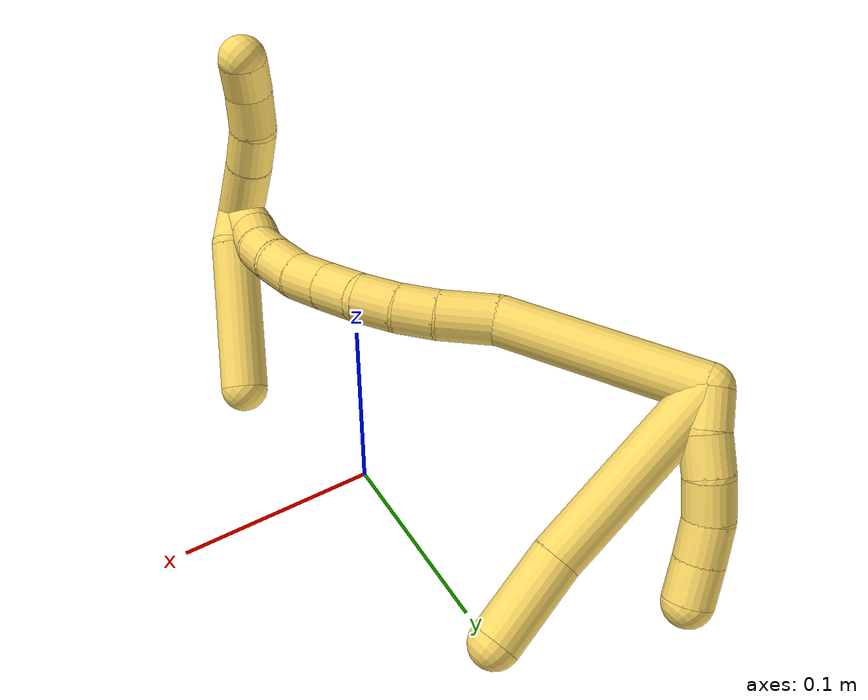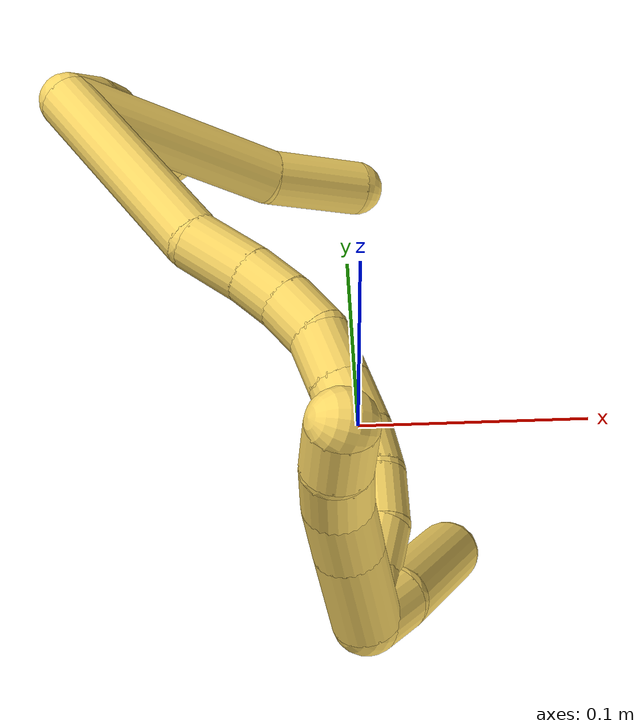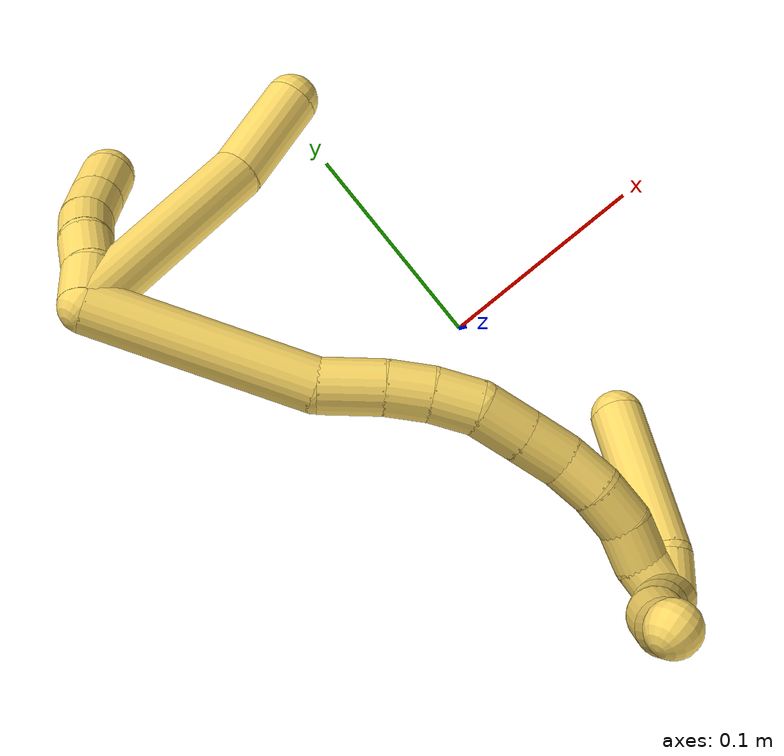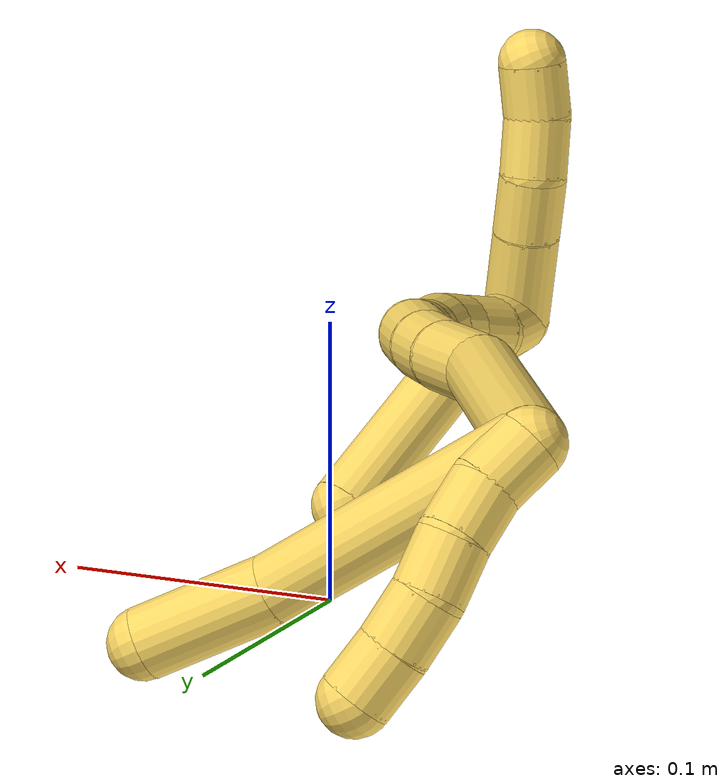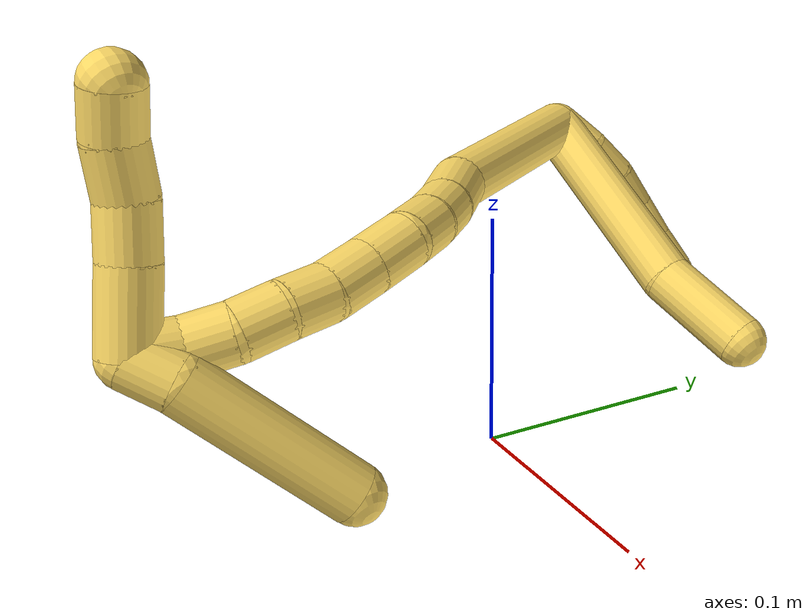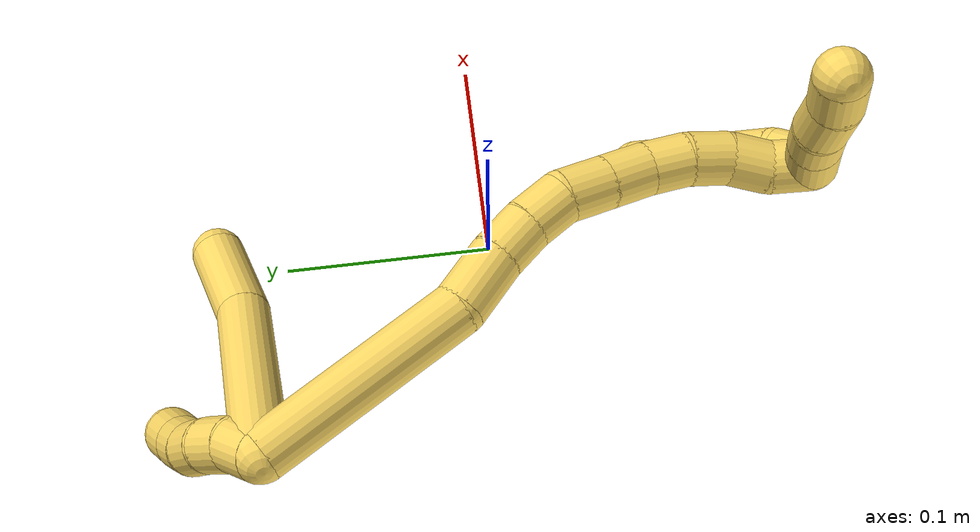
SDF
<sdf version="1.7">
 <world name="default">
  <model name="5">
   <static>0</static>
   <link name="5">
    <collision name="collision-cylinder-e_1_2_8">
     <pose>0.004453 -0.001261 0.051305 0.024579 0.086546 0.001064</pose>
     <geometry><cylinder><radius>0.0125</radius><length>0.103026</length></cylinder></geometry>
     <surface>
      <friction><ode><mu>1.16</mu><mu2>1.16</mu2><slip1>0</slip1><slip2>0</slip2></ode></friction>
      <contact><ode><kp>1e+06</kp><kd>1</kd><max_vel>0</max_vel><min_depth>0.001</min_depth></ode></contact>
     </surface>
    </collision>
    <visual name="visual-cylinder-e_1_2_8">
     <pose>0.004453 -0.001261 0.051305 0.024579 0.086546 0.001064</pose>
     <geometry><cylinder><radius>0.0125</radius><length>0.103026</length></cylinder></geometry>
     <material><ambient>1 0.858824 0.4 1</ambient></material>
    </visual>
    <collision name="collision-cylinder-e_2_8_6">
     <pose>0.006682 -0.000281 0.125883 -0.096034 -0.094798 0.004559</pose>
     <geometry><cylinder><radius>0.0125</radius><length>0.046974</length></cylinder></geometry>
     <surface>
      <friction><ode><mu>1.16</mu><mu2>1.16</mu2><slip1>0</slip1><slip2>0</slip2></ode></friction>
      <contact><ode><kp>1e+06</kp><kd>1</kd><max_vel>0</max_vel><min_depth>0.001</min_depth></ode></contact>
     </surface>
    </collision>
    <visual name="visual-cylinder-e_2_8_6">
     <pose>0.006682 -0.000281 0.125883 -0.096034 -0.094798 0.004559</pose>
     <geometry><cylinder><radius>0.0125</radius><length>0.046974</length></cylinder></geometry>
     <material><ambient>1 0.858824 0.4 1</ambient></material>
    </visual>
    <collision name="collision-cylinder-e_1_2_9">
     <pose>0.001024 0.005752 0.008116 -0.616577 0.102592 -0.032695</pose>
     <geometry><cylinder><radius>0.0125</radius><length>0.02</length></cylinder></geometry>
     <surface>
      <friction><ode><mu>1.16</mu><mu2>1.16</mu2><slip1>0</slip1><slip2>0</slip2></ode></friction>
      <contact><ode><kp>1e+06</kp><kd>1</kd><max_vel>0</max_vel><min_depth>0.001</min_depth></ode></contact>
     </surface>
    </collision>
    <visual name="visual-cylinder-e_1_2_9">
     <pose>0.001024 0.005752 0.008116 -0.616577 0.102592 -0.032695</pose>
     <geometry><cylinder><radius>0.0125</radius><length>0.02</length></cylinder></geometry>
     <material><ambient>1 0.858824 0.4 1</ambient></material>
    </visual>
    <collision name="collision-cylinder-e_2_9_10">
     <pose>0.004801 0.018363 0.022968 -0.794355 0.278922 -0.117628</pose>
     <geometry><cylinder><radius>0.0125</radius><length>0.02</length></cylinder></geometry>
     <surface>
      <friction><ode><mu>1.16</mu><mu2>1.16</mu2><slip1>0</slip1><slip2>0</slip2></ode></friction>
      <contact><ode><kp>1e+06</kp><kd>1</kd><max_vel>0</max_vel><min_depth>0.001</min_depth></ode></contact>
     </surface>
    </collision>
    <visual name="visual-cylinder-e_2_9_10">
     <pose>0.004801 0.018363 0.022968 -0.794355 0.278922 -0.117628</pose>
     <geometry><cylinder><radius>0.0125</radius><length>0.02</length></cylinder></geometry>
     <material><ambient>1 0.858824 0.4 1</ambient></material>
    </visual>
    <collision name="collision-cylinder-e_3_10_11">
     <pose>0.012087 0.030969 0.036518 -0.700789 0.470369 -0.174704</pose>
     <geometry><cylinder><radius>0.0125</radius><length>0.02</length></cylinder></geometry>
     <surface>
      <friction><ode><mu>1.16</mu><mu2>1.16</mu2><slip1>0</slip1><slip2>0</slip2></ode></friction>
      <contact><ode><kp>1e+06</kp><kd>1</kd><max_vel>0</max_vel><min_depth>0.001</min_depth></ode></contact>
     </surface>
    </collision>
    <visual name="visual-cylinder-e_3_10_11">
     <pose>0.012087 0.030969 0.036518 -0.700789 0.470369 -0.174704</pose>
     <geometry><cylinder><radius>0.0125</radius><length>0.02</length></cylinder></geometry>
     <material><ambient>1 0.858824 0.4 1</ambient></material>
    </visual>
    <collision name="collision-cylinder-e_4_11_12">
     <pose>0.020552 0.040805 0.051566 -0.460761 0.404266 -0.096057</pose>
     <geometry><cylinder><radius>0.0125</radius><length>0.02</length></cylinder></geometry>
     <surface>
      <friction><ode><mu>1.16</mu><mu2>1.16</mu2><slip1>0</slip1><slip2>0</slip2></ode></friction>
      <contact><ode><kp>1e+06</kp><kd>1</kd><max_vel>0</max_vel><min_depth>0.001</min_depth></ode></contact>
     </surface>
    </collision>
    <visual name="visual-cylinder-e_4_11_12">
     <pose>0.020552 0.040805 0.051566 -0.460761 0.404266 -0.096057</pose>
     <geometry><cylinder><radius>0.0125</radius><length>0.02</length></cylinder></geometry>
     <material><ambient>1 0.858824 0.4 1</ambient></material>
    </visual>
    <collision name="collision-cylinder-e_5_12_5">
     <pose>0.027721 0.048779 0.068429 -0.423278 0.329443 -0.0714</pose>
     <geometry><cylinder><radius>0.0125</radius><length>0.02</length></cylinder></geometry>
     <surface>
      <friction><ode><mu>1.16</mu><mu2>1.16</mu2><slip1>0</slip1><slip2>0</slip2></ode></friction>
      <contact><ode><kp>1e+06</kp><kd>1</kd><max_vel>0</max_vel><min_depth>0.001</min_depth></ode></contact>
     </surface>
    </collision>
    <visual name="visual-cylinder-e_5_12_5">
     <pose>0.027721 0.048779 0.068429 -0.423278 0.329443 -0.0714</pose>
     <geometry><cylinder><radius>0.0125</radius><length>0.02</length></cylinder></geometry>
     <material><ambient>1 0.858824 0.4 1</ambient></material>
    </visual>
    <collision name="collision-cylinder-e_1_2_13">
     <pose>0.005343 -0.048917 0.017718 1.22329 0.102345 0.071814</pose>
     <geometry><cylinder><radius>0.0125</radius><length>0.104602</length></cylinder></geometry>
     <surface>
      <friction><ode><mu>1.16</mu><mu2>1.16</mu2><slip1>0</slip1><slip2>0</slip2></ode></friction>
      <contact><ode><kp>1e+06</kp><kd>1</kd><max_vel>0</max_vel><min_depth>0.001</min_depth></ode></contact>
     </surface>
    </collision>
    <visual name="visual-cylinder-e_1_2_13">
     <pose>0.005343 -0.048917 0.017718 1.22329 0.102345 0.071814</pose>
     <geometry><cylinder><radius>0.0125</radius><length>0.104602</length></cylinder></geometry>
     <material><ambient>1 0.858824 0.4 1</ambient></material>
    </visual>
    <collision name="collision-cylinder-e_2_13_14">
     <pose>0.010116 -0.109815 0.043982 0.951141 -0.038758 -0.019962</pose>
     <geometry><cylinder><radius>0.0125</radius><length>0.029454</length></cylinder></geometry>
     <surface>
      <friction><ode><mu>1.16</mu><mu2>1.16</mu2><slip1>0</slip1><slip2>0</slip2></ode></friction>
      <contact><ode><kp>1e+06</kp><kd>1</kd><max_vel>0</max_vel><min_depth>0.001</min_depth></ode></contact>
     </surface>
    </collision>
    <visual name="visual-cylinder-e_2_13_14">
     <pose>0.010116 -0.109815 0.043982 0.951141 -0.038758 -0.019962</pose>
     <geometry><cylinder><radius>0.0125</radius><length>0.029454</length></cylinder></geometry>
     <material><ambient>1 0.858824 0.4 1</ambient></material>
    </visual>
    <collision name="collision-cylinder-e_3_14_15">
     <pose>0.009764 -0.130682 0.057601 1.05214 0.021306 0.012372</pose>
     <geometry><cylinder><radius>0.0125</radius><length>0.02047</length></cylinder></geometry>
     <surface>
      <friction><ode><mu>1.16</mu><mu2>1.16</mu2><slip1>0</slip1><slip2>0</slip2></ode></friction>
      <contact><ode><kp>1e+06</kp><kd>1</kd><max_vel>0</max_vel><min_depth>0.001</min_depth></ode></contact>
     </surface>
    </collision>
    <visual name="visual-cylinder-e_3_14_15">
     <pose>0.009764 -0.130682 0.057601 1.05214 0.021306 0.012372</pose>
     <geometry><cylinder><radius>0.0125</radius><length>0.02047</length></cylinder></geometry>
     <material><ambient>1 0.858824 0.4 1</ambient></material>
    </visual>
    <collision name="collision-cylinder-e_4_15_16">
     <pose>0.011041 -0.149211 0.066824 1.16433 0.100613 0.066262</pose>
     <geometry><cylinder><radius>0.0125</radius><length>0.021102</length></cylinder></geometry>
     <surface>
      <friction><ode><mu>1.16</mu><mu2>1.16</mu2><slip1>0</slip1><slip2>0</slip2></ode></friction>
      <contact><ode><kp>1e+06</kp><kd>1</kd><max_vel>0</max_vel><min_depth>0.001</min_depth></ode></contact>
     </surface>
    </collision>
    <visual name="visual-cylinder-e_4_15_16">
     <pose>0.011041 -0.149211 0.066824 1.16433 0.100613 0.066262</pose>
     <geometry><cylinder><radius>0.0125</radius><length>0.021102</length></cylinder></geometry>
     <material><ambient>1 0.858824 0.4 1</ambient></material>
    </visual>
    <collision name="collision-cylinder-e_5_16_17">
     <pose>0.016617 -0.168888 0.073803 1.29606 0.408697 0.311268</pose>
     <geometry><cylinder><radius>0.0125</radius><length>0.022724</length></cylinder></geometry>
     <surface>
      <friction><ode><mu>1.16</mu><mu2>1.16</mu2><slip1>0</slip1><slip2>0</slip2></ode></friction>
      <contact><ode><kp>1e+06</kp><kd>1</kd><max_vel>0</max_vel><min_depth>0.001</min_depth></ode></contact>
     </surface>
    </collision>
    <visual name="visual-cylinder-e_5_16_17">
     <pose>0.016617 -0.168888 0.073803 1.29606 0.408697 0.311268</pose>
     <geometry><cylinder><radius>0.0125</radius><length>0.022724</length></cylinder></geometry>
     <material><ambient>1 0.858824 0.4 1</ambient></material>
    </visual>
    <collision name="collision-cylinder-e_6_17_18">
     <pose>0.025297 -0.188573 0.079176 1.31299 0.395427 0.306292</pose>
     <geometry><cylinder><radius>0.0125</radius><length>0.021627</length></cylinder></geometry>
     <surface>
      <friction><ode><mu>1.16</mu><mu2>1.16</mu2><slip1>0</slip1><slip2>0</slip2></ode></friction>
      <contact><ode><kp>1e+06</kp><kd>1</kd><max_vel>0</max_vel><min_depth>0.001</min_depth></ode></contact>
     </surface>
    </collision>
    <visual name="visual-cylinder-e_6_17_18">
     <pose>0.025297 -0.188573 0.079176 1.31299 0.395427 0.306292</pose>
     <geometry><cylinder><radius>0.0125</radius><length>0.021627</length></cylinder></geometry>
     <material><ambient>1 0.858824 0.4 1</ambient></material>
    </visual>
    <collision name="collision-cylinder-e_7_18_19">
     <pose>0.03312 -0.207513 0.082344 1.50375 0.374184 0.35041</pose>
     <geometry><cylinder><radius>0.0125</radius><length>0.020008</length></cylinder></geometry>
     <surface>
      <friction><ode><mu>1.16</mu><mu2>1.16</mu2><slip1>0</slip1><slip2>0</slip2></ode></friction>
      <contact><ode><kp>1e+06</kp><kd>1</kd><max_vel>0</max_vel><min_depth>0.001</min_depth></ode></contact>
     </surface>
    </collision>
    <visual name="visual-cylinder-e_7_18_19">
     <pose>0.03312 -0.207513 0.082344 1.50375 0.374184 0.35041</pose>
     <geometry><cylinder><radius>0.0125</radius><length>0.020008</length></cylinder></geometry>
     <material><ambient>1 0.858824 0.4 1</ambient></material>
    </visual>
    <collision name="collision-cylinder-e_8_19_20">
     <pose>0.04212 -0.22526 0.082815 1.58882 0.563529 0.573231</pose>
     <geometry><cylinder><radius>0.0125</radius><length>0.020009</length></cylinder></geometry>
     <surface>
      <friction><ode><mu>1.16</mu><mu2>1.16</mu2><slip1>0</slip1><slip2>0</slip2></ode></friction>
      <contact><ode><kp>1e+06</kp><kd>1</kd><max_vel>0</max_vel><min_depth>0.001</min_depth></ode></contact>
     </surface>
    </collision>
    <visual name="visual-cylinder-e_8_19_20">
     <pose>0.04212 -0.22526 0.082815 1.58882 0.563529 0.573231</pose>
     <geometry><cylinder><radius>0.0125</radius><length>0.020009</length></cylinder></geometry>
     <material><ambient>1 0.858824 0.4 1</ambient></material>
    </visual>
    <collision name="collision-cylinder-e_9_20_21">
     <pose>0.053691 -0.241133 0.080166 1.8956 0.672109 0.905087</pose>
     <geometry><cylinder><radius>0.0125</radius><length>0.020003</length></cylinder></geometry>
     <surface>
      <friction><ode><mu>1.16</mu><mu2>1.16</mu2><slip1>0</slip1><slip2>0</slip2></ode></friction>
      <contact><ode><kp>1e+06</kp><kd>1</kd><max_vel>0</max_vel><min_depth>0.001</min_depth></ode></contact>
     </surface>
    </collision>
    <visual name="visual-cylinder-e_9_20_21">
     <pose>0.053691 -0.241133 0.080166 1.8956 0.672109 0.905087</pose>
     <geometry><cylinder><radius>0.0125</radius><length>0.020003</length></cylinder></geometry>
     <material><ambient>1 0.858824 0.4 1</ambient></material>
    </visual>
    <collision name="collision-cylinder-e_10_21_1">
     <pose>0.063538 -0.257679 0.075776 1.77511 0.370288 0.452279</pose>
     <geometry><cylinder><radius>0.0125</radius><length>0.020001</length></cylinder></geometry>
     <surface>
      <friction><ode><mu>1.16</mu><mu2>1.16</mu2><slip1>0</slip1><slip2>0</slip2></ode></friction>
      <contact><ode><kp>1e+06</kp><kd>1</kd><max_vel>0</max_vel><min_depth>0.001</min_depth></ode></contact>
     </surface>
    </collision>
    <visual name="visual-cylinder-e_10_21_1">
     <pose>0.063538 -0.257679 0.075776 1.77511 0.370288 0.452279</pose>
     <geometry><cylinder><radius>0.0125</radius><length>0.020001</length></cylinder></geometry>
     <material><ambient>1 0.858824 0.4 1</ambient></material>
    </visual>
    <collision name="collision-cylinder-e_1_1_22">
     <pose>0.053168 -0.267659 0.063409 3.06051 -0.92645 -2.97953</pose>
     <geometry><cylinder><radius>0.0125</radius><length>0.034994</length></cylinder></geometry>
     <surface>
      <friction><ode><mu>1.16</mu><mu2>1.16</mu2><slip1>0</slip1><slip2>0</slip2></ode></friction>
      <contact><ode><kp>1e+06</kp><kd>1</kd><max_vel>0</max_vel><min_depth>0.001</min_depth></ode></contact>
     </surface>
    </collision>
    <visual name="visual-cylinder-e_1_1_22">
     <pose>0.053168 -0.267659 0.063409 3.06051 -0.92645 -2.97953</pose>
     <geometry><cylinder><radius>0.0125</radius><length>0.034994</length></cylinder></geometry>
     <material><ambient>1 0.858824 0.4 1</ambient></material>
    </visual>
    <collision name="collision-cylinder-e_2_22_23">
     <pose>0.030092 -0.269666 0.046187 2.97196 -0.925206 -2.80388</pose>
     <geometry><cylinder><radius>0.0125</radius><length>0.022755</length></cylinder></geometry>
     <surface>
      <friction><ode><mu>1.16</mu><mu2>1.16</mu2><slip1>0</slip1><slip2>0</slip2></ode></friction>
      <contact><ode><kp>1e+06</kp><kd>1</kd><max_vel>0</max_vel><min_depth>0.001</min_depth></ode></contact>
     </surface>
    </collision>
    <visual name="visual-cylinder-e_2_22_23">
     <pose>0.030092 -0.269666 0.046187 2.97196 -0.925206 -2.80388</pose>
     <geometry><cylinder><radius>0.0125</radius><length>0.022755</length></cylinder></geometry>
     <material><ambient>1 0.858824 0.4 1</ambient></material>
    </visual>
    <collision name="collision-cylinder-e_3_23_24">
     <pose>0.012225 -0.274534 0.033716 2.56624 -0.910202 -2.05395</pose>
     <geometry><cylinder><radius>0.0125</radius><length>0.022237</length></cylinder></geometry>
     <surface>
      <friction><ode><mu>1.16</mu><mu2>1.16</mu2><slip1>0</slip1><slip2>0</slip2></ode></friction>
      <contact><ode><kp>1e+06</kp><kd>1</kd><max_vel>0</max_vel><min_depth>0.001</min_depth></ode></contact>
     </surface>
    </collision>
    <visual name="visual-cylinder-e_3_23_24">
     <pose>0.012225 -0.274534 0.033716 2.56624 -0.910202 -2.05395</pose>
     <geometry><cylinder><radius>0.0125</radius><length>0.022237</length></cylinder></geometry>
     <material><ambient>1 0.858824 0.4 1</ambient></material>
    </visual>
    <collision name="collision-cylinder-e_4_24_4">
     <pose>-0.005475 -0.280555 0.024089 2.60727 -1.10047 -2.30224</pose>
     <geometry><cylinder><radius>0.0125</radius><length>0.020015</length></cylinder></geometry>
     <surface>
      <friction><ode><mu>1.16</mu><mu2>1.16</mu2><slip1>0</slip1><slip2>0</slip2></ode></friction>
      <contact><ode><kp>1e+06</kp><kd>1</kd><max_vel>0</max_vel><min_depth>0.001</min_depth></ode></contact>
     </surface>
    </collision>
    <visual name="visual-cylinder-e_4_24_4">
     <pose>-0.005475 -0.280555 0.024089 2.60727 -1.10047 -2.30224</pose>
     <geometry><cylinder><radius>0.0125</radius><length>0.020015</length></cylinder></geometry>
     <material><ambient>1 0.858824 0.4 1</ambient></material>
    </visual>
    <collision name="collision-cylinder-e_1_1_25">
     <pose>0.065778 -0.26072 0.081825 -0.654157 -0.136941 0.046524</pose>
     <geometry><cylinder><radius>0.0125</radius><length>0.020201</length></cylinder></geometry>
     <surface>
      <friction><ode><mu>1.16</mu><mu2>1.16</mu2><slip1>0</slip1><slip2>0</slip2></ode></friction>
      <contact><ode><kp>1e+06</kp><kd>1</kd><max_vel>0</max_vel><min_depth>0.001</min_depth></ode></contact>
     </surface>
    </collision>
    <visual name="visual-cylinder-e_1_1_25">
     <pose>0.065778 -0.26072 0.081825 -0.654157 -0.136941 0.046524</pose>
     <geometry><cylinder><radius>0.0125</radius><length>0.020201</length></cylinder></geometry>
     <material><ambient>1 0.858824 0.4 1</ambient></material>
    </visual>
    <collision name="collision-cylinder-e_2_25_3">
     <pose>0.070039 -0.225999 0.116975 -0.810879 0.141838 -0.060963</pose>
     <geometry><cylinder><radius>0.0125</radius><length>0.079799</length></cylinder></geometry>
     <surface>
      <friction><ode><mu>1.16</mu><mu2>1.16</mu2><slip1>0</slip1><slip2>0</slip2></ode></friction>
      <contact><ode><kp>1e+06</kp><kd>1</kd><max_vel>0</max_vel><min_depth>0.001</min_depth></ode></contact>
     </surface>
    </collision>
    <visual name="visual-cylinder-e_2_25_3">
     <pose>0.070039 -0.225999 0.116975 -0.810879 0.141838 -0.060963</pose>
     <geometry><cylinder><radius>0.0125</radius><length>0.079799</length></cylinder></geometry>
     <material><ambient>1 0.858824 0.4 1</ambient></material>
    </visual>
    <collision name="collision-sphere-3">
     <pose>0.07568 -0.197366 0.144184 0 -0 0</pose>
     <geometry><sphere><radius>0.0125</radius></sphere></geometry>
     <surface>
      <friction><ode><mu>1.16</mu><mu2>1.16</mu2><slip1>0</slip1><slip2>0</slip2></ode></friction>
      <contact><ode><kp>1e+06</kp><kd>1</kd><max_vel>0</max_vel><min_depth>0.001</min_depth></ode></contact>
     </surface>
    </collision>
    <visual name="visual-sphere-3">
     <pose>0.07568 -0.197366 0.144184 0 -0 0</pose>
     <geometry><sphere><radius>0.0125</radius></sphere></geometry>
     <material><ambient>1 0.858824 0.4 1</ambient></material>
    </visual>
    <collision name="collision-sphere-25">
     <pose>0.064399 -0.254631 0.089766 0 -0 0</pose>
     <geometry><sphere><radius>0.0125</radius></sphere></geometry>
     <surface>
      <friction><ode><mu>1.16</mu><mu2>1.16</mu2><slip1>0</slip1><slip2>0</slip2></ode></friction>
      <contact><ode><kp>1e+06</kp><kd>1</kd><max_vel>0</max_vel><min_depth>0.001</min_depth></ode></contact>
     </surface>
    </collision>
    <visual name="visual-sphere-25">
     <pose>0.064399 -0.254631 0.089766 0 -0 0</pose>
     <geometry><sphere><radius>0.0125</radius></sphere></geometry>
     <material><ambient>1 0.858824 0.4 1</ambient></material>
    </visual>
    <collision name="collision-sphere-4">
     <pose>-0.014396 -0.282865 0.020186 0 -0 0</pose>
     <geometry><sphere><radius>0.0125</radius></sphere></geometry>
     <surface>
      <friction><ode><mu>1.16</mu><mu2>1.16</mu2><slip1>0</slip1><slip2>0</slip2></ode></friction>
      <contact><ode><kp>1e+06</kp><kd>1</kd><max_vel>0</max_vel><min_depth>0.001</min_depth></ode></contact>
     </surface>
    </collision>
    <visual name="visual-sphere-4">
     <pose>-0.014396 -0.282865 0.020186 0 -0 0</pose>
     <geometry><sphere><radius>0.0125</radius></sphere></geometry>
     <material><ambient>1 0.858824 0.4 1</ambient></material>
    </visual>
    <collision name="collision-sphere-24">
     <pose>0.003446 -0.278246 0.027992 0 -0 0</pose>
     <geometry><sphere><radius>0.0125</radius></sphere></geometry>
     <surface>
      <friction><ode><mu>1.16</mu><mu2>1.16</mu2><slip1>0</slip1><slip2>0</slip2></ode></friction>
      <contact><ode><kp>1e+06</kp><kd>1</kd><max_vel>0</max_vel><min_depth>0.001</min_depth></ode></contact>
     </surface>
    </collision>
    <visual name="visual-sphere-24">
     <pose>0.003446 -0.278246 0.027992 0 -0 0</pose>
     <geometry><sphere><radius>0.0125</radius></sphere></geometry>
     <material><ambient>1 0.858824 0.4 1</ambient></material>
    </visual>
    <collision name="collision-sphere-23">
     <pose>0.021004 -0.270822 0.03944 0 -0 0</pose>
     <geometry><sphere><radius>0.0125</radius></sphere></geometry>
     <surface>
      <friction><ode><mu>1.16</mu><mu2>1.16</mu2><slip1>0</slip1><slip2>0</slip2></ode></friction>
      <contact><ode><kp>1e+06</kp><kd>1</kd><max_vel>0</max_vel><min_depth>0.001</min_depth></ode></contact>
     </surface>
    </collision>
    <visual name="visual-sphere-23">
     <pose>0.021004 -0.270822 0.03944 0 -0 0</pose>
     <geometry><sphere><radius>0.0125</radius></sphere></geometry>
     <material><ambient>1 0.858824 0.4 1</ambient></material>
    </visual>
    <collision name="collision-sphere-22">
     <pose>0.039179 -0.268511 0.052934 0 -0 0</pose>
     <geometry><sphere><radius>0.0125</radius></sphere></geometry>
     <surface>
      <friction><ode><mu>1.16</mu><mu2>1.16</mu2><slip1>0</slip1><slip2>0</slip2></ode></friction>
      <contact><ode><kp>1e+06</kp><kd>1</kd><max_vel>0</max_vel><min_depth>0.001</min_depth></ode></contact>
     </surface>
    </collision>
    <visual name="visual-sphere-22">
     <pose>0.039179 -0.268511 0.052934 0 -0 0</pose>
     <geometry><sphere><radius>0.0125</radius></sphere></geometry>
     <material><ambient>1 0.858824 0.4 1</ambient></material>
    </visual>
    <collision name="collision-sphere-1">
     <pose>0.067157 -0.266808 0.073885 0 -0 0</pose>
     <geometry><sphere><radius>0.0125</radius></sphere></geometry>
     <surface>
      <friction><ode><mu>1.16</mu><mu2>1.16</mu2><slip1>0</slip1><slip2>0</slip2></ode></friction>
      <contact><ode><kp>1e+06</kp><kd>1</kd><max_vel>0</max_vel><min_depth>0.001</min_depth></ode></contact>
     </surface>
    </collision>
    <visual name="visual-sphere-1">
     <pose>0.067157 -0.266808 0.073885 0 -0 0</pose>
     <geometry><sphere><radius>0.0125</radius></sphere></geometry>
     <material><ambient>1 0.858824 0.4 1</ambient></material>
    </visual>
    <collision name="collision-sphere-21">
     <pose>0.059919 -0.24855 0.077668 0 -0 0</pose>
     <geometry><sphere><radius>0.0125</radius></sphere></geometry>
     <surface>
      <friction><ode><mu>1.16</mu><mu2>1.16</mu2><slip1>0</slip1><slip2>0</slip2></ode></friction>
      <contact><ode><kp>1e+06</kp><kd>1</kd><max_vel>0</max_vel><min_depth>0.001</min_depth></ode></contact>
     </surface>
    </collision>
    <visual name="visual-sphere-21">
     <pose>0.059919 -0.24855 0.077668 0 -0 0</pose>
     <geometry><sphere><radius>0.0125</radius></sphere></geometry>
     <material><ambient>1 0.858824 0.4 1</ambient></material>
    </visual>
    <collision name="collision-sphere-11">
     <pose>0.016619 0.036717 0.043331 0 -0 0</pose>
     <geometry><sphere><radius>0.0125</radius></sphere></geometry>
     <surface>
      <friction><ode><mu>1.16</mu><mu2>1.16</mu2><slip1>0</slip1><slip2>0</slip2></ode></friction>
      <contact><ode><kp>1e+06</kp><kd>1</kd><max_vel>0</max_vel><min_depth>0.001</min_depth></ode></contact>
     </surface>
    </collision>
    <visual name="visual-sphere-11">
     <pose>0.016619 0.036717 0.043331 0 -0 0</pose>
     <geometry><sphere><radius>0.0125</radius></sphere></geometry>
     <material><ambient>1 0.858824 0.4 1</ambient></material>
    </visual>
    <collision name="collision-sphere-10">
     <pose>0.007555 0.025221 0.029705 0 -0 0</pose>
     <geometry><sphere><radius>0.0125</radius></sphere></geometry>
     <surface>
      <friction><ode><mu>1.16</mu><mu2>1.16</mu2><slip1>0</slip1><slip2>0</slip2></ode></friction>
      <contact><ode><kp>1e+06</kp><kd>1</kd><max_vel>0</max_vel><min_depth>0.001</min_depth></ode></contact>
     </surface>
    </collision>
    <visual name="visual-sphere-10">
     <pose>0.007555 0.025221 0.029705 0 -0 0</pose>
     <geometry><sphere><radius>0.0125</radius></sphere></geometry>
     <material><ambient>1 0.858824 0.4 1</ambient></material>
    </visual>
    <collision name="collision-sphere-6">
     <pose>0.004459 0.001961 0.149157 0 -0 0</pose>
     <geometry><sphere><radius>0.0125</radius></sphere></geometry>
     <surface>
      <friction><ode><mu>1.16</mu><mu2>1.16</mu2><slip1>0</slip1><slip2>0</slip2></ode></friction>
      <contact><ode><kp>1e+06</kp><kd>1</kd><max_vel>0</max_vel><min_depth>0.001</min_depth></ode></contact>
     </surface>
    </collision>
    <visual name="visual-sphere-6">
     <pose>0.004459 0.001961 0.149157 0 -0 0</pose>
     <geometry><sphere><radius>0.0125</radius></sphere></geometry>
     <material><ambient>1 0.858824 0.4 1</ambient></material>
    </visual>
    <collision name="collision-sphere-9">
     <pose>0.002048 0.011504 0.016231 0 -0 0</pose>
     <geometry><sphere><radius>0.0125</radius></sphere></geometry>
     <surface>
      <friction><ode><mu>1.16</mu><mu2>1.16</mu2><slip1>0</slip1><slip2>0</slip2></ode></friction>
      <contact><ode><kp>1e+06</kp><kd>1</kd><max_vel>0</max_vel><min_depth>0.001</min_depth></ode></contact>
     </surface>
    </collision>
    <visual name="visual-sphere-9">
     <pose>0.002048 0.011504 0.016231 0 -0 0</pose>
     <geometry><sphere><radius>0.0125</radius></sphere></geometry>
     <material><ambient>1 0.858824 0.4 1</ambient></material>
    </visual>
    <collision name="collision-sphere-2">
     <geometry><sphere><radius>0.0125</radius></sphere></geometry>
     <surface>
      <friction><ode><mu>1.16</mu><mu2>1.16</mu2><slip1>0</slip1><slip2>0</slip2></ode></friction>
      <contact><ode><kp>1e+06</kp><kd>1</kd><max_vel>0</max_vel><min_depth>0.001</min_depth></ode></contact>
     </surface>
    </collision>
    <visual name="visual-sphere-2">
     <geometry><sphere><radius>0.0125</radius></sphere></geometry>
     <material><ambient>1 0.858824 0.4 1</ambient></material>
    </visual>
    <collision name="collision-sphere-19">
     <pose>0.036776 -0.216804 0.082968 0 -0 0</pose>
     <geometry><sphere><radius>0.0125</radius></sphere></geometry>
     <surface>
      <friction><ode><mu>1.16</mu><mu2>1.16</mu2><slip1>0</slip1><slip2>0</slip2></ode></friction>
      <contact><ode><kp>1e+06</kp><kd>1</kd><max_vel>0</max_vel><min_depth>0.001</min_depth></ode></contact>
     </surface>
    </collision>
    <visual name="visual-sphere-19">
     <pose>0.036776 -0.216804 0.082968 0 -0 0</pose>
     <geometry><sphere><radius>0.0125</radius></sphere></geometry>
     <material><ambient>1 0.858824 0.4 1</ambient></material>
    </visual>
    <collision name="collision-sphere-8">
     <pose>0.008905 -0.002523 0.102609 0 -0 0</pose>
     <geometry><sphere><radius>0.0125</radius></sphere></geometry>
     <surface>
      <friction><ode><mu>1.16</mu><mu2>1.16</mu2><slip1>0</slip1><slip2>0</slip2></ode></friction>
      <contact><ode><kp>1e+06</kp><kd>1</kd><max_vel>0</max_vel><min_depth>0.001</min_depth></ode></contact>
     </surface>
    </collision>
    <visual name="visual-sphere-8">
     <pose>0.008905 -0.002523 0.102609 0 -0 0</pose>
     <geometry><sphere><radius>0.0125</radius></sphere></geometry>
     <material><ambient>1 0.858824 0.4 1</ambient></material>
    </visual>
    <collision name="collision-sphere-12">
     <pose>0.024486 0.044893 0.059802 0 -0 0</pose>
     <geometry><sphere><radius>0.0125</radius></sphere></geometry>
     <surface>
      <friction><ode><mu>1.16</mu><mu2>1.16</mu2><slip1>0</slip1><slip2>0</slip2></ode></friction>
      <contact><ode><kp>1e+06</kp><kd>1</kd><max_vel>0</max_vel><min_depth>0.001</min_depth></ode></contact>
     </surface>
    </collision>
    <visual name="visual-sphere-12">
     <pose>0.024486 0.044893 0.059802 0 -0 0</pose>
     <geometry><sphere><radius>0.0125</radius></sphere></geometry>
     <material><ambient>1 0.858824 0.4 1</ambient></material>
    </visual>
    <collision name="collision-sphere-5">
     <pose>0.030956 0.052666 0.077056 0 -0 0</pose>
     <geometry><sphere><radius>0.0125</radius></sphere></geometry>
     <surface>
      <friction><ode><mu>1.16</mu><mu2>1.16</mu2><slip1>0</slip1><slip2>0</slip2></ode></friction>
      <contact><ode><kp>1e+06</kp><kd>1</kd><max_vel>0</max_vel><min_depth>0.001</min_depth></ode></contact>
     </surface>
    </collision>
    <visual name="visual-sphere-5">
     <pose>0.030956 0.052666 0.077056 0 -0 0</pose>
     <geometry><sphere><radius>0.0125</radius></sphere></geometry>
     <material><ambient>1 0.858824 0.4 1</ambient></material>
    </visual>
    <collision name="collision-sphere-13">
     <pose>0.010687 -0.097835 0.035436 0 -0 0</pose>
     <geometry><sphere><radius>0.0125</radius></sphere></geometry>
     <surface>
      <friction><ode><mu>1.16</mu><mu2>1.16</mu2><slip1>0</slip1><slip2>0</slip2></ode></friction>
      <contact><ode><kp>1e+06</kp><kd>1</kd><max_vel>0</max_vel><min_depth>0.001</min_depth></ode></contact>
     </surface>
    </collision>
    <visual name="visual-sphere-13">
     <pose>0.010687 -0.097835 0.035436 0 -0 0</pose>
     <geometry><sphere><radius>0.0125</radius></sphere></geometry>
     <material><ambient>1 0.858824 0.4 1</ambient></material>
    </visual>
    <collision name="collision-sphere-14">
     <pose>0.009546 -0.121795 0.052529 0 -0 0</pose>
     <geometry><sphere><radius>0.0125</radius></sphere></geometry>
     <surface>
      <friction><ode><mu>1.16</mu><mu2>1.16</mu2><slip1>0</slip1><slip2>0</slip2></ode></friction>
      <contact><ode><kp>1e+06</kp><kd>1</kd><max_vel>0</max_vel><min_depth>0.001</min_depth></ode></contact>
     </surface>
    </collision>
    <visual name="visual-sphere-14">
     <pose>0.009546 -0.121795 0.052529 0 -0 0</pose>
     <geometry><sphere><radius>0.0125</radius></sphere></geometry>
     <material><ambient>1 0.858824 0.4 1</ambient></material>
    </visual>
    <collision name="collision-sphere-15">
     <pose>0.009982 -0.139568 0.062674 0 -0 0</pose>
     <geometry><sphere><radius>0.0125</radius></sphere></geometry>
     <surface>
      <friction><ode><mu>1.16</mu><mu2>1.16</mu2><slip1>0</slip1><slip2>0</slip2></ode></friction>
      <contact><ode><kp>1e+06</kp><kd>1</kd><max_vel>0</max_vel><min_depth>0.001</min_depth></ode></contact>
     </surface>
    </collision>
    <visual name="visual-sphere-15">
     <pose>0.009982 -0.139568 0.062674 0 -0 0</pose>
     <geometry><sphere><radius>0.0125</radius></sphere></geometry>
     <material><ambient>1 0.858824 0.4 1</ambient></material>
    </visual>
    <collision name="collision-sphere-16">
     <pose>0.012101 -0.158853 0.070974 0 -0 0</pose>
     <geometry><sphere><radius>0.0125</radius></sphere></geometry>
     <surface>
      <friction><ode><mu>1.16</mu><mu2>1.16</mu2><slip1>0</slip1><slip2>0</slip2></ode></friction>
      <contact><ode><kp>1e+06</kp><kd>1</kd><max_vel>0</max_vel><min_depth>0.001</min_depth></ode></contact>
     </surface>
    </collision>
    <visual name="visual-sphere-16">
     <pose>0.012101 -0.158853 0.070974 0 -0 0</pose>
     <geometry><sphere><radius>0.0125</radius></sphere></geometry>
     <material><ambient>1 0.858824 0.4 1</ambient></material>
    </visual>
    <collision name="collision-sphere-17">
     <pose>0.021132 -0.178924 0.076631 0 -0 0</pose>
     <geometry><sphere><radius>0.0125</radius></sphere></geometry>
     <surface>
      <friction><ode><mu>1.16</mu><mu2>1.16</mu2><slip1>0</slip1><slip2>0</slip2></ode></friction>
      <contact><ode><kp>1e+06</kp><kd>1</kd><max_vel>0</max_vel><min_depth>0.001</min_depth></ode></contact>
     </surface>
    </collision>
    <visual name="visual-sphere-17">
     <pose>0.021132 -0.178924 0.076631 0 -0 0</pose>
     <geometry><sphere><radius>0.0125</radius></sphere></geometry>
     <material><ambient>1 0.858824 0.4 1</ambient></material>
    </visual>
    <collision name="collision-sphere-18">
     <pose>0.029463 -0.198222 0.08172 0 -0 0</pose>
     <geometry><sphere><radius>0.0125</radius></sphere></geometry>
     <surface>
      <friction><ode><mu>1.16</mu><mu2>1.16</mu2><slip1>0</slip1><slip2>0</slip2></ode></friction>
      <contact><ode><kp>1e+06</kp><kd>1</kd><max_vel>0</max_vel><min_depth>0.001</min_depth></ode></contact>
     </surface>
    </collision>
    <visual name="visual-sphere-18">
     <pose>0.029463 -0.198222 0.08172 0 -0 0</pose>
     <geometry><sphere><radius>0.0125</radius></sphere></geometry>
     <material><ambient>1 0.858824 0.4 1</ambient></material>
    </visual>
    <collision name="collision-sphere-20">
     <pose>0.047464 -0.233716 0.082663 0 -0 0</pose>
     <geometry><sphere><radius>0.0125</radius></sphere></geometry>
     <surface>
      <friction><ode><mu>1.16</mu><mu2>1.16</mu2><slip1>0</slip1><slip2>0</slip2></ode></friction>
      <contact><ode><kp>1e+06</kp><kd>1</kd><max_vel>0</max_vel><min_depth>0.001</min_depth></ode></contact>
     </surface>
    </collision>
    <visual name="visual-sphere-20">
     <pose>0.047464 -0.233716 0.082663 0 -0 0</pose>
     <geometry><sphere><radius>0.0125</radius></sphere></geometry>
     <material><ambient>1 0.858824 0.4 1</ambient></material>
    </visual>
    <inertial>
     <pose>0.023715 -0.118002 0.061322 0 -0 0</pose>
     <mass>0.75</mass>
     <inertia>
      <ixx>0.000273</ixx>
      <ixy>0</ixy>
      <ixz>0</ixz>
      <iyy>0.000187</iyy>
      <iyz>0</iyz>
      <izz>7.5e-05</izz>
     </inertia>
    </inertial>
   </link>
   <pose>-0.121307 0.109389 0.095156 -2.65763 0.996411 -2.41408</pose>
  </model>
 </world>
</sdf>
